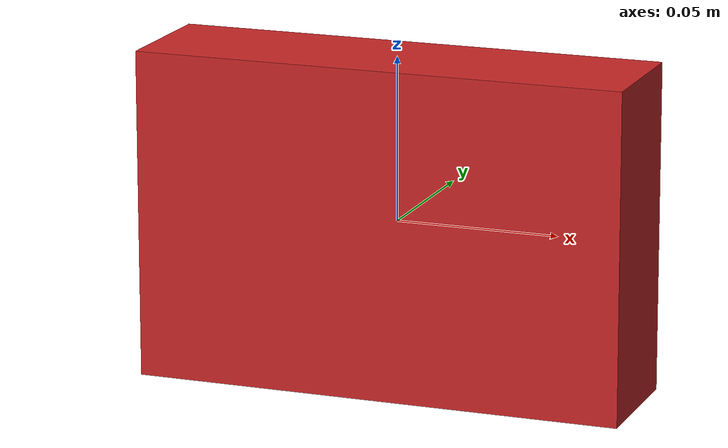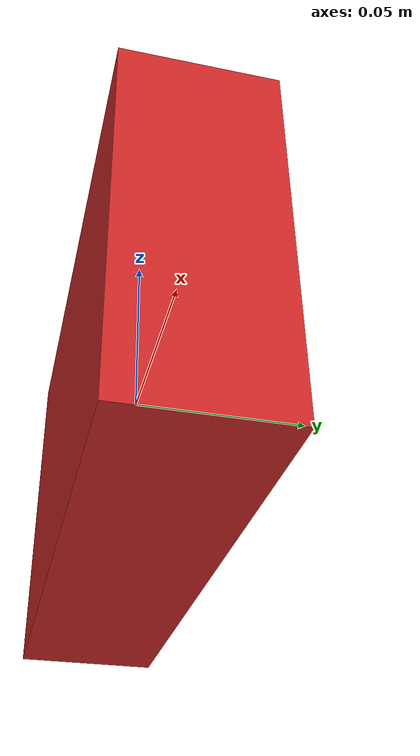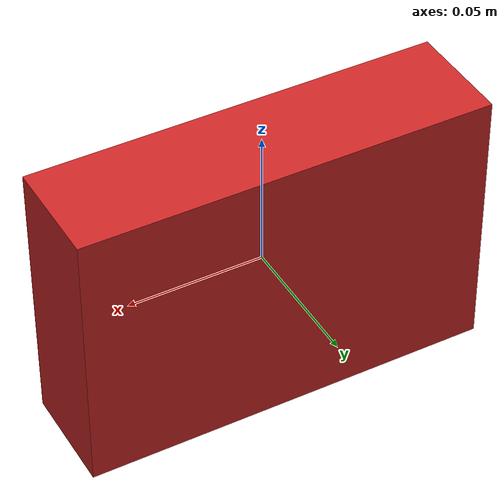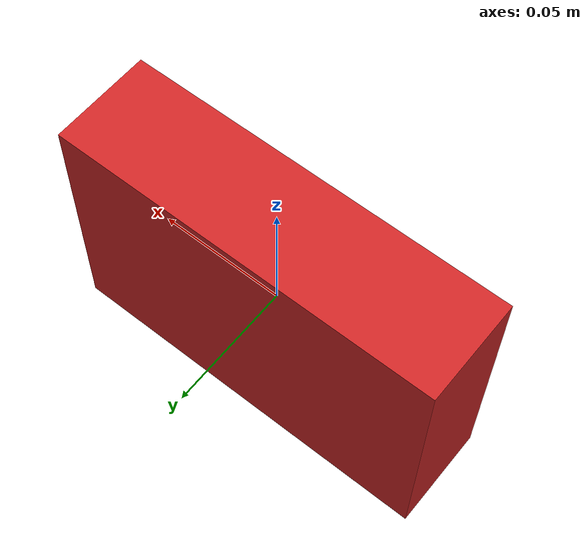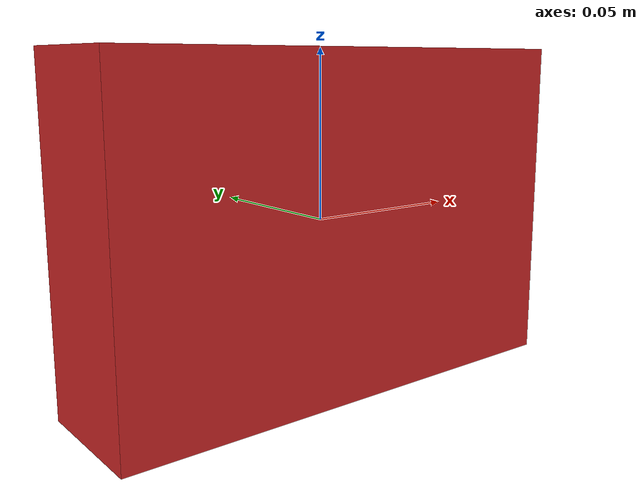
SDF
<?xml version="1.0"?>
<sdf version="1.6">
    <model name='cube_a'>
        <pose>0 0 0 0 0 0</pose>
        <static>0</static>
        <link name='body'>
            <inertial>
                <mass>0.6000000193715093</mass>
                <pose>0 0 0 0 0 0</pose>
                <inertia>
                    <ixx>0.0005800000300506753</ixx>
                    <ixy>0</ixy>
                    <ixz>0</ixz>
                    <iyy>0.0016250001567726378</iyy>
                    <iyz>0</iyz>
                    <izz>0.0012050001247351407</izz>
                </inertia>
            </inertial>
            <collision name="cube_a-coll">
                <pose>0 0 0 0 0 0</pose>
                <geometry>
                    <box>
                        <size>0.15 0.04 0.1</size>
                    </box>
                </geometry>
                <max_contacts>10</max_contacts>
                <surface>
                    <contact>
                        <ode/>
                    </contact>
                    <bounce/>
                    <friction>
                        <torsional>
                            <ode/>
                        </torsional>
                        <ode/>
                    </friction>
                </surface>
            </collision>
            <visual name='cube_a'>
                <pose>0 0 0 0 0 0</pose>
                <geometry>
                    <box>
                        <size>0.15 0.04 0.1</size>
                    </box>
                </geometry>
                <material>
                    <script>
                      <name>Gazebo/Red</name>
                      <uri>file://media/materials/scripts/gazebo.material</uri>
                    </script>
                </material>
            </visual>
            <velocity_decay>
                <linear>0.01</linear>
                <angular>0.01</angular>
            </velocity_decay>
            <self_collide>0</self_collide>
            <kinematic>0</kinematic>
            <gravity>0</gravity>
        </link>
    </model>
</sdf>
